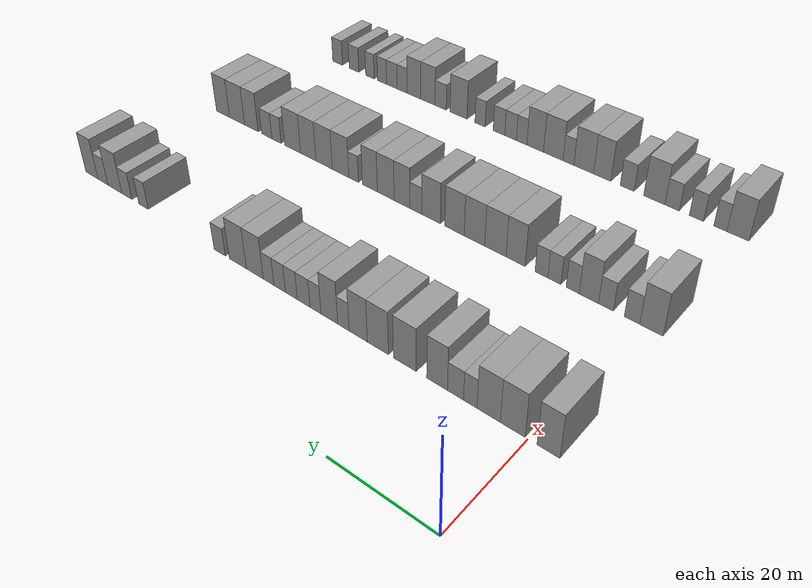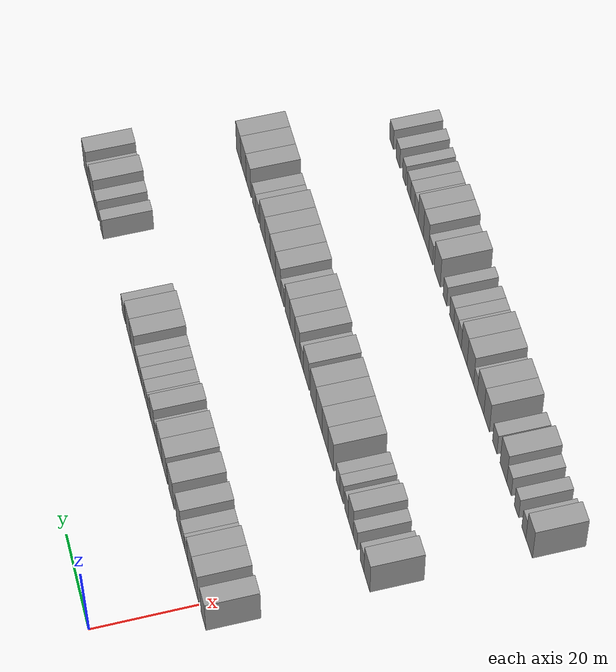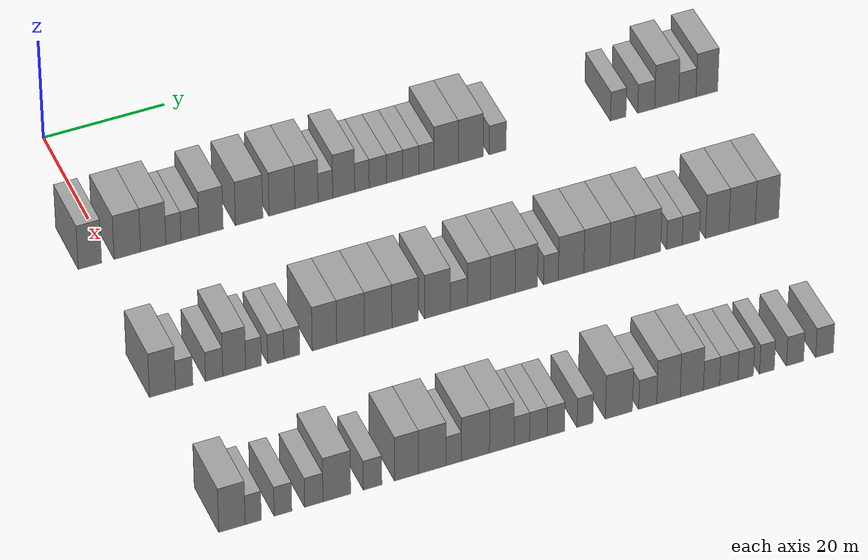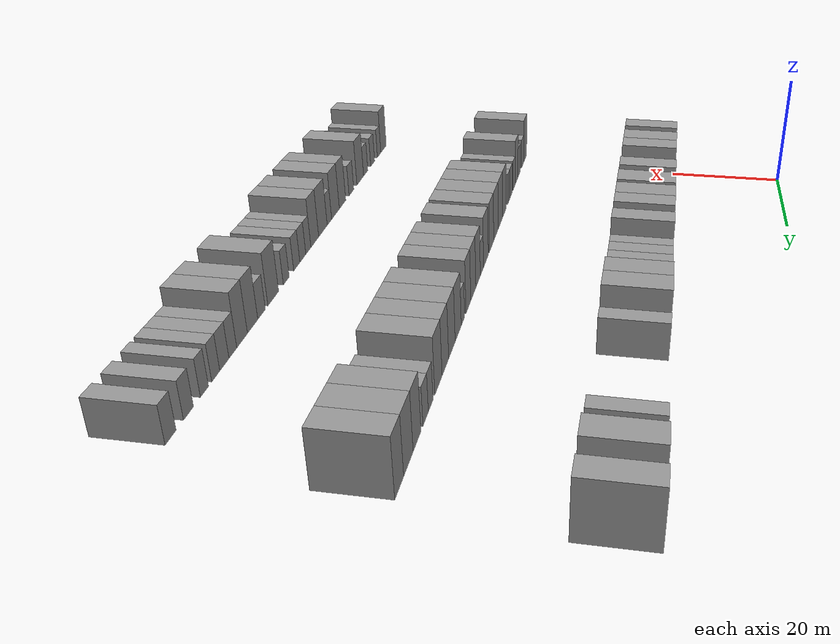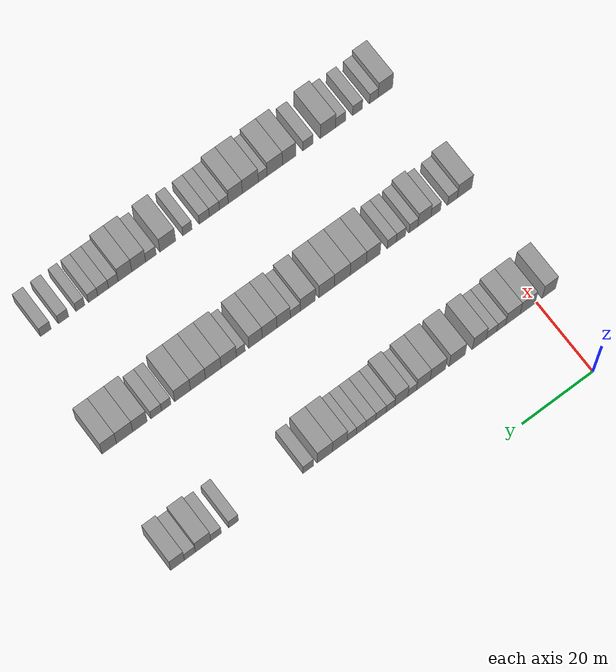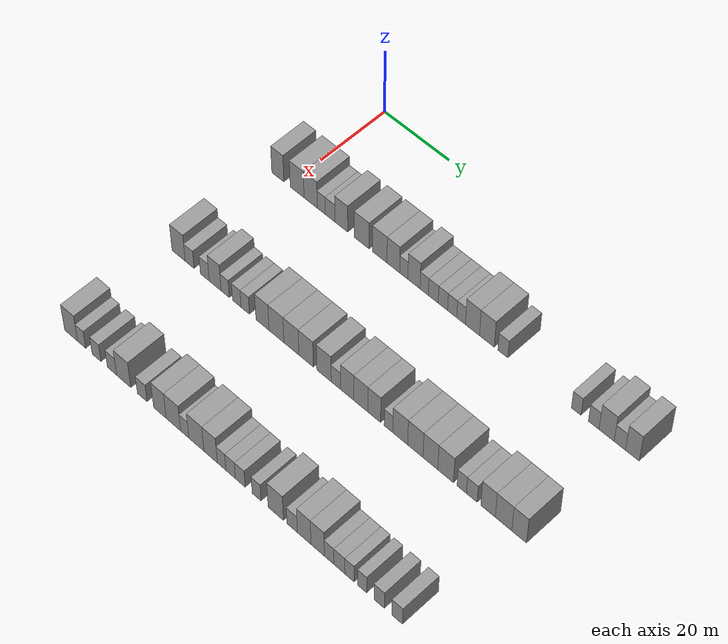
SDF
<sdf version="1.6">
 <world name="default">
  <model name="building_103">
   <static>1</static>
   <pose>25.0000 -3.3682 0 0.000000 0.000000 0.000000</pose>
   <link name="link">
    <pose>0 0 4.50 0 0 0</pose>
    <collision name="collision"><geometry><box><size>10.0000 3.8019 9.0000</size></box></geometry></collision>
    <visual name="visual">
     <cast_shadows>0</cast_shadows>
     <geometry><box><size>10.0000 3.8019 9.0000</size></box></geometry>
     <material>
      <script>
       <uri>model://grey_wall/materials/scripts</uri>
       <uri>model://grey_wall/materials/textures</uri>
       <name>vrc/grey_wall</name>
      </script>
     </material>
    </visual>
   </link>
  </model>
  <model name="building_104">
   <static>1</static>
   <pose>25.0000 2.6820 0 0.000000 0.000000 0.000000</pose>
   <link name="link">
    <pose>0 0 4.50 0 0 0</pose>
    <collision name="collision"><geometry><box><size>10.0000 4.2985 9.0000</size></box></geometry></collision>
    <visual name="visual">
     <cast_shadows>0</cast_shadows>
     <geometry><box><size>10.0000 4.2985 9.0000</size></box></geometry>
     <material>
      <script>
       <uri>model://grey_wall/materials/scripts</uri>
       <uri>model://grey_wall/materials/textures</uri>
       <name>vrc/grey_wall</name>
      </script>
     </material>
    </visual>
   </link>
  </model>
  <model name="building_105">
   <static>1</static>
   <pose>25.0000 6.8907 0 0.000000 0.000000 0.000000</pose>
   <link name="link">
    <pose>0 0 4.50 0 0 0</pose>
    <collision name="collision"><geometry><box><size>10.0000 4.1188 9.0000</size></box></geometry></collision>
    <visual name="visual">
     <cast_shadows>0</cast_shadows>
     <geometry><box><size>10.0000 4.1188 9.0000</size></box></geometry>
     <material>
      <script>
       <uri>model://grey_wall/materials/scripts</uri>
       <uri>model://grey_wall/materials/textures</uri>
       <name>vrc/grey_wall</name>
      </script>
     </material>
    </visual>
   </link>
  </model>
  <model name="building_106">
   <static>1</static>
   <pose>25.0000 10.1801 0 0.000000 0.000000 0.000000</pose>
   <link name="link">
    <pose>0 0 3.00 0 0 0</pose>
    <collision name="collision"><geometry><box><size>10.0000 2.4600 6.0000</size></box></geometry></collision>
    <visual name="visual">
     <cast_shadows>0</cast_shadows>
     <geometry><box><size>10.0000 2.4600 6.0000</size></box></geometry>
     <material>
      <script>
       <uri>model://grey_wall/materials/scripts</uri>
       <uri>model://grey_wall/materials/textures</uri>
       <name>vrc/grey_wall</name>
      </script>
     </material>
    </visual>
   </link>
  </model>
  <model name="building_107">
   <static>1</static>
   <pose>25.0000 12.8931 0 0.000000 0.000000 0.000000</pose>
   <link name="link">
    <pose>0 0 3.00 0 0 0</pose>
    <collision name="collision"><geometry><box><size>10.0000 2.9661 6.0000</size></box></geometry></collision>
    <visual name="visual">
     <cast_shadows>0</cast_shadows>
     <geometry><box><size>10.0000 2.9661 6.0000</size></box></geometry>
     <material>
      <script>
       <uri>model://grey_wall/materials/scripts</uri>
       <uri>model://grey_wall/materials/textures</uri>
       <name>vrc/grey_wall</name>
      </script>
     </material>
    </visual>
   </link>
  </model>
  <model name="building_108">
   <static>1</static>
   <pose>25.0000 16.3398 0 0.000000 0.000000 0.000000</pose>
   <link name="link">
    <pose>0 0 4.50 0 0 0</pose>
    <collision name="collision"><geometry><box><size>10.0000 3.9273 9.0000</size></box></geometry></collision>
    <visual name="visual">
     <cast_shadows>0</cast_shadows>
     <geometry><box><size>10.0000 3.9273 9.0000</size></box></geometry>
     <material>
      <script>
       <uri>model://grey_wall/materials/scripts</uri>
       <uri>model://grey_wall/materials/textures</uri>
       <name>vrc/grey_wall</name>
      </script>
     </material>
    </visual>
   </link>
  </model>
  <model name="building_109">
   <static>1</static>
   <pose>25.0000 22.5527 0 0.000000 0.000000 0.000000</pose>
   <link name="link">
    <pose>0 0 4.50 0 0 0</pose>
    <collision name="collision"><geometry><box><size>10.0000 4.4985 9.0000</size></box></geometry></collision>
    <visual name="visual">
     <cast_shadows>0</cast_shadows>
     <geometry><box><size>10.0000 4.4985 9.0000</size></box></geometry>
     <material>
      <script>
       <uri>model://grey_wall/materials/scripts</uri>
       <uri>model://grey_wall/materials/textures</uri>
       <name>vrc/grey_wall</name>
      </script>
     </material>
    </visual>
   </link>
  </model>
  <model name="building_110">
   <static>1</static>
   <pose>25.0000 27.9456 0 0.000000 0.000000 0.000000</pose>
   <link name="link">
    <pose>0 0 4.50 0 0 0</pose>
    <collision name="collision"><geometry><box><size>10.0000 4.2873 9.0000</size></box></geometry></collision>
    <visual name="visual">
     <cast_shadows>0</cast_shadows>
     <geometry><box><size>10.0000 4.2873 9.0000</size></box></geometry>
     <material>
      <script>
       <uri>model://grey_wall/materials/scripts</uri>
       <uri>model://grey_wall/materials/textures</uri>
       <name>vrc/grey_wall</name>
      </script>
     </material>
    </visual>
   </link>
  </model>
  <model name="building_111">
   <static>1</static>
   <pose>25.0000 31.9948 0 0.000000 0.000000 0.000000</pose>
   <link name="link">
    <pose>0 0 4.50 0 0 0</pose>
    <collision name="collision"><geometry><box><size>10.0000 3.8110 9.0000</size></box></geometry></collision>
    <visual name="visual">
     <cast_shadows>0</cast_shadows>
     <geometry><box><size>10.0000 3.8110 9.0000</size></box></geometry>
     <material>
      <script>
       <uri>model://grey_wall/materials/scripts</uri>
       <uri>model://grey_wall/materials/textures</uri>
       <name>vrc/grey_wall</name>
      </script>
     </material>
    </visual>
   </link>
  </model>
  <model name="building_112">
   <static>1</static>
   <pose>25.0000 35.1090 0 0.000000 0.000000 0.000000</pose>
   <link name="link">
    <pose>0 0 3.00 0 0 0</pose>
    <collision name="collision"><geometry><box><size>10.0000 2.4174 6.0000</size></box></geometry></collision>
    <visual name="visual">
     <cast_shadows>0</cast_shadows>
     <geometry><box><size>10.0000 2.4174 6.0000</size></box></geometry>
     <material>
      <script>
       <uri>model://grey_wall/materials/scripts</uri>
       <uri>model://grey_wall/materials/textures</uri>
       <name>vrc/grey_wall</name>
      </script>
     </material>
    </visual>
   </link>
  </model>
  <model name="building_113">
   <static>1</static>
   <pose>25.0000 38.1297 0 0.000000 0.000000 0.000000</pose>
   <link name="link">
    <pose>0 0 4.50 0 0 0</pose>
    <collision name="collision"><geometry><box><size>10.0000 3.6241 9.0000</size></box></geometry></collision>
    <visual name="visual">
     <cast_shadows>0</cast_shadows>
     <geometry><box><size>10.0000 3.6241 9.0000</size></box></geometry>
     <material>
      <script>
       <uri>model://grey_wall/materials/scripts</uri>
       <uri>model://grey_wall/materials/textures</uri>
       <name>vrc/grey_wall</name>
      </script>
     </material>
    </visual>
   </link>
  </model>
  <model name="building_114">
   <static>1</static>
   <pose>25.0000 41.1473 0 0.000000 0.000000 0.000000</pose>
   <link name="link">
    <pose>0 0 3.00 0 0 0</pose>
    <collision name="collision"><geometry><box><size>10.0000 2.4110 6.0000</size></box></geometry></collision>
    <visual name="visual">
     <cast_shadows>0</cast_shadows>
     <geometry><box><size>10.0000 2.4110 6.0000</size></box></geometry>
     <material>
      <script>
       <uri>model://grey_wall/materials/scripts</uri>
       <uri>model://grey_wall/materials/textures</uri>
       <name>vrc/grey_wall</name>
      </script>
     </material>
    </visual>
   </link>
  </model>
  <model name="building_115">
   <static>1</static>
   <pose>25.0000 43.7891 0 0.000000 0.000000 0.000000</pose>
   <link name="link">
    <pose>0 0 3.00 0 0 0</pose>
    <collision name="collision"><geometry><box><size>10.0000 2.8726 6.0000</size></box></geometry></collision>
    <visual name="visual">
     <cast_shadows>0</cast_shadows>
     <geometry><box><size>10.0000 2.8726 6.0000</size></box></geometry>
     <material>
      <script>
       <uri>model://grey_wall/materials/scripts</uri>
       <uri>model://grey_wall/materials/textures</uri>
       <name>vrc/grey_wall</name>
      </script>
     </material>
    </visual>
   </link>
  </model>
  <model name="building_116">
   <static>1</static>
   <pose>25.0000 46.5852 0 0.000000 0.000000 0.000000</pose>
   <link name="link">
    <pose>0 0 3.00 0 0 0</pose>
    <collision name="collision"><geometry><box><size>10.0000 2.7195 6.0000</size></box></geometry></collision>
    <visual name="visual">
     <cast_shadows>0</cast_shadows>
     <geometry><box><size>10.0000 2.7195 6.0000</size></box></geometry>
     <material>
      <script>
       <uri>model://grey_wall/materials/scripts</uri>
       <uri>model://grey_wall/materials/textures</uri>
       <name>vrc/grey_wall</name>
      </script>
     </material>
    </visual>
   </link>
  </model>
  <model name="building_117">
   <static>1</static>
   <pose>25.0000 49.2761 0 0.000000 0.000000 0.000000</pose>
   <link name="link">
    <pose>0 0 3.00 0 0 0</pose>
    <collision name="collision"><geometry><box><size>10.0000 2.6624 6.0000</size></box></geometry></collision>
    <visual name="visual">
     <cast_shadows>0</cast_shadows>
     <geometry><box><size>10.0000 2.6624 6.0000</size></box></geometry>
     <material>
      <script>
       <uri>model://grey_wall/materials/scripts</uri>
       <uri>model://grey_wall/materials/textures</uri>
       <name>vrc/grey_wall</name>
      </script>
     </material>
    </visual>
   </link>
  </model>
  <model name="building_118">
   <static>1</static>
   <pose>25.0000 51.8542 0 0.000000 0.000000 0.000000</pose>
   <link name="link">
    <pose>0 0 3.00 0 0 0</pose>
    <collision name="collision"><geometry><box><size>10.0000 2.4939 6.0000</size></box></geometry></collision>
    <visual name="visual">
     <cast_shadows>0</cast_shadows>
     <geometry><box><size>10.0000 2.4939 6.0000</size></box></geometry>
     <material>
      <script>
       <uri>model://grey_wall/materials/scripts</uri>
       <uri>model://grey_wall/materials/textures</uri>
       <name>vrc/grey_wall</name>
      </script>
     </material>
    </visual>
   </link>
  </model>
  <model name="building_119">
   <static>1</static>
   <pose>25.0000 55.1334 0 0.000000 0.000000 0.000000</pose>
   <link name="link">
    <pose>0 0 4.50 0 0 0</pose>
    <collision name="collision"><geometry><box><size>10.0000 4.0644 9.0000</size></box></geometry></collision>
    <visual name="visual">
     <cast_shadows>0</cast_shadows>
     <geometry><box><size>10.0000 4.0644 9.0000</size></box></geometry>
     <material>
      <script>
       <uri>model://grey_wall/materials/scripts</uri>
       <uri>model://grey_wall/materials/textures</uri>
       <name>vrc/grey_wall</name>
      </script>
     </material>
    </visual>
   </link>
  </model>
  <model name="building_120">
   <static>1</static>
   <pose>25.0000 59.2651 0 0.000000 0.000000 0.000000</pose>
   <link name="link">
    <pose>0 0 4.50 0 0 0</pose>
    <collision name="collision"><geometry><box><size>10.0000 4.1990 9.0000</size></box></geometry></collision>
    <visual name="visual">
     <cast_shadows>0</cast_shadows>
     <geometry><box><size>10.0000 4.1990 9.0000</size></box></geometry>
     <material>
      <script>
       <uri>model://grey_wall/materials/scripts</uri>
       <uri>model://grey_wall/materials/textures</uri>
       <name>vrc/grey_wall</name>
      </script>
     </material>
    </visual>
   </link>
  </model>
  <model name="building_121">
   <static>1</static>
   <pose>25.0000 63.7911 0 0.000000 0.000000 0.000000</pose>
   <link name="link">
    <pose>0 0 3.00 0 0 0</pose>
    <collision name="collision"><geometry><box><size>10.0000 2.8531 6.0000</size></box></geometry></collision>
    <visual name="visual">
     <cast_shadows>0</cast_shadows>
     <geometry><box><size>10.0000 2.8531 6.0000</size></box></geometry>
     <material>
      <script>
       <uri>model://grey_wall/materials/scripts</uri>
       <uri>model://grey_wall/materials/textures</uri>
       <name>vrc/grey_wall</name>
      </script>
     </material>
    </visual>
   </link>
  </model>
  <model name="building_122">
   <static>1</static>
   <pose>25.0000 84.1562 0 0.000000 0.000000 0.000000</pose>
   <link name="link">
    <pose>0 0 3.00 0 0 0</pose>
    <collision name="collision"><geometry><box><size>10.0000 2.6257 6.0000</size></box></geometry></collision>
    <visual name="visual">
     <cast_shadows>0</cast_shadows>
     <geometry><box><size>10.0000 2.6257 6.0000</size></box></geometry>
     <material>
      <script>
       <uri>model://grey_wall/materials/scripts</uri>
       <uri>model://grey_wall/materials/textures</uri>
       <name>vrc/grey_wall</name>
      </script>
     </material>
    </visual>
   </link>
  </model>
  <model name="building_123">
   <static>1</static>
   <pose>25.0000 88.9051 0 0.000000 0.000000 0.000000</pose>
   <link name="link">
    <pose>0 0 3.00 0 0 0</pose>
    <collision name="collision"><geometry><box><size>10.0000 2.8723 6.0000</size></box></geometry></collision>
    <visual name="visual">
     <cast_shadows>0</cast_shadows>
     <geometry><box><size>10.0000 2.8723 6.0000</size></box></geometry>
     <material>
      <script>
       <uri>model://grey_wall/materials/scripts</uri>
       <uri>model://grey_wall/materials/textures</uri>
       <name>vrc/grey_wall</name>
      </script>
     </material>
    </visual>
   </link>
  </model>
  <model name="building_124">
   <static>1</static>
   <pose>25.0000 92.3896 0 0.000000 0.000000 0.000000</pose>
   <link name="link">
    <pose>0 0 4.50 0 0 0</pose>
    <collision name="collision"><geometry><box><size>10.0000 4.0966 9.0000</size></box></geometry></collision>
    <visual name="visual">
     <cast_shadows>0</cast_shadows>
     <geometry><box><size>10.0000 4.0966 9.0000</size></box></geometry>
     <material>
      <script>
       <uri>model://grey_wall/materials/scripts</uri>
       <uri>model://grey_wall/materials/textures</uri>
       <name>vrc/grey_wall</name>
      </script>
     </material>
    </visual>
   </link>
  </model>
  <model name="building_125">
   <static>1</static>
   <pose>25.0000 95.9275 0 0.000000 0.000000 0.000000</pose>
   <link name="link">
    <pose>0 0 3.00 0 0 0</pose>
    <collision name="collision"><geometry><box><size>10.0000 2.9792 6.0000</size></box></geometry></collision>
    <visual name="visual">
     <cast_shadows>0</cast_shadows>
     <geometry><box><size>10.0000 2.9792 6.0000</size></box></geometry>
     <material>
      <script>
       <uri>model://grey_wall/materials/scripts</uri>
       <uri>model://grey_wall/materials/textures</uri>
       <name>vrc/grey_wall</name>
      </script>
     </material>
    </visual>
   </link>
  </model>
  <model name="building_126">
   <static>1</static>
   <pose>25.0000 99.2682 0 0.000000 0.000000 0.000000</pose>
   <link name="link">
    <pose>0 0 4.50 0 0 0</pose>
    <collision name="collision"><geometry><box><size>10.0000 3.7021 9.0000</size></box></geometry></collision>
    <visual name="visual">
     <cast_shadows>0</cast_shadows>
     <geometry><box><size>10.0000 3.7021 9.0000</size></box></geometry>
     <material>
      <script>
       <uri>model://grey_wall/materials/scripts</uri>
       <uri>model://grey_wall/materials/textures</uri>
       <name>vrc/grey_wall</name>
      </script>
     </material>
    </visual>
   </link>
  </model>
  <model name="building_335">
   <static>1</static>
   <pose>55.0000 -2.9037 0 0.000000 0.000000 0.000000</pose>
   <link name="link">
    <pose>0 0 4.50 0 0 0</pose>
    <collision name="collision"><geometry><box><size>10.0000 4.1291 9.0000</size></box></geometry></collision>
    <visual name="visual">
     <cast_shadows>0</cast_shadows>
     <geometry><box><size>10.0000 4.1291 9.0000</size></box></geometry>
     <material>
      <script>
       <uri>model://grey_wall/materials/scripts</uri>
       <uri>model://grey_wall/materials/textures</uri>
       <name>vrc/grey_wall</name>
      </script>
     </material>
    </visual>
   </link>
  </model>
  <model name="building_336">
   <static>1</static>
   <pose>55.0000 0.5549 0 0.000000 0.000000 0.000000</pose>
   <link name="link">
    <pose>0 0 3.00 0 0 0</pose>
    <collision name="collision"><geometry><box><size>10.0000 2.7881 6.0000</size></box></geometry></collision>
    <visual name="visual">
     <cast_shadows>0</cast_shadows>
     <geometry><box><size>10.0000 2.7881 6.0000</size></box></geometry>
     <material>
      <script>
       <uri>model://grey_wall/materials/scripts</uri>
       <uri>model://grey_wall/materials/textures</uri>
       <name>vrc/grey_wall</name>
      </script>
     </material>
    </visual>
   </link>
  </model>
  <model name="building_337">
   <static>1</static>
   <pose>55.0000 5.3256 0 0.000000 0.000000 0.000000</pose>
   <link name="link">
    <pose>0 0 3.00 0 0 0</pose>
    <collision name="collision"><geometry><box><size>10.0000 2.7534 6.0000</size></box></geometry></collision>
    <visual name="visual">
     <cast_shadows>0</cast_shadows>
     <geometry><box><size>10.0000 2.7534 6.0000</size></box></geometry>
     <material>
      <script>
       <uri>model://grey_wall/materials/scripts</uri>
       <uri>model://grey_wall/materials/textures</uri>
       <name>vrc/grey_wall</name>
      </script>
     </material>
    </visual>
   </link>
  </model>
  <model name="building_338">
   <static>1</static>
   <pose>55.0000 8.5414 0 0.000000 0.000000 0.000000</pose>
   <link name="link">
    <pose>0 0 4.50 0 0 0</pose>
    <collision name="collision"><geometry><box><size>10.0000 3.6780 9.0000</size></box></geometry></collision>
    <visual name="visual">
     <cast_shadows>0</cast_shadows>
     <geometry><box><size>10.0000 3.6780 9.0000</size></box></geometry>
     <material>
      <script>
       <uri>model://grey_wall/materials/scripts</uri>
       <uri>model://grey_wall/materials/textures</uri>
       <name>vrc/grey_wall</name>
      </script>
     </material>
    </visual>
   </link>
  </model>
  <model name="building_339">
   <static>1</static>
   <pose>55.0000 11.6383 0 0.000000 0.000000 0.000000</pose>
   <link name="link">
    <pose>0 0 3.00 0 0 0</pose>
    <collision name="collision"><geometry><box><size>10.0000 2.5159 6.0000</size></box></geometry></collision>
    <visual name="visual">
     <cast_shadows>0</cast_shadows>
     <geometry><box><size>10.0000 2.5159 6.0000</size></box></geometry>
     <material>
      <script>
       <uri>model://grey_wall/materials/scripts</uri>
       <uri>model://grey_wall/materials/textures</uri>
       <name>vrc/grey_wall</name>
      </script>
     </material>
    </visual>
   </link>
  </model>
  <model name="building_340">
   <static>1</static>
   <pose>55.0000 15.1910 0 0.000000 0.000000 0.000000</pose>
   <link name="link">
    <pose>0 0 3.00 0 0 0</pose>
    <collision name="collision"><geometry><box><size>10.0000 2.5895 6.0000</size></box></geometry></collision>
    <visual name="visual">
     <cast_shadows>0</cast_shadows>
     <geometry><box><size>10.0000 2.5895 6.0000</size></box></geometry>
     <material>
      <script>
       <uri>model://grey_wall/materials/scripts</uri>
       <uri>model://grey_wall/materials/textures</uri>
       <name>vrc/grey_wall</name>
      </script>
     </material>
    </visual>
   </link>
  </model>
  <model name="building_341">
   <static>1</static>
   <pose>55.0000 17.7638 0 0.000000 0.000000 0.000000</pose>
   <link name="link">
    <pose>0 0 3.00 0 0 0</pose>
    <collision name="collision"><geometry><box><size>10.0000 2.5561 6.0000</size></box></geometry></collision>
    <visual name="visual">
     <cast_shadows>0</cast_shadows>
     <geometry><box><size>10.0000 2.5561 6.0000</size></box></geometry>
     <material>
      <script>
       <uri>model://grey_wall/materials/scripts</uri>
       <uri>model://grey_wall/materials/textures</uri>
       <name>vrc/grey_wall</name>
      </script>
     </material>
    </visual>
   </link>
  </model>
  <model name="building_342">
   <static>1</static>
   <pose>55.0000 23.0082 0 0.000000 0.000000 0.000000</pose>
   <link name="link">
    <pose>0 0 4.50 0 0 0</pose>
    <collision name="collision"><geometry><box><size>10.0000 3.9326 9.0000</size></box></geometry></collision>
    <visual name="visual">
     <cast_shadows>0</cast_shadows>
     <geometry><box><size>10.0000 3.9326 9.0000</size></box></geometry>
     <material>
      <script>
       <uri>model://grey_wall/materials/scripts</uri>
       <uri>model://grey_wall/materials/textures</uri>
       <name>vrc/grey_wall</name>
      </script>
     </material>
    </visual>
   </link>
  </model>
  <model name="building_343">
   <static>1</static>
   <pose>55.0000 27.2236 0 0.000000 0.000000 0.000000</pose>
   <link name="link">
    <pose>0 0 4.50 0 0 0</pose>
    <collision name="collision"><geometry><box><size>10.0000 4.4982 9.0000</size></box></geometry></collision>
    <visual name="visual">
     <cast_shadows>0</cast_shadows>
     <geometry><box><size>10.0000 4.4982 9.0000</size></box></geometry>
     <material>
      <script>
       <uri>model://grey_wall/materials/scripts</uri>
       <uri>model://grey_wall/materials/textures</uri>
       <name>vrc/grey_wall</name>
      </script>
     </material>
    </visual>
   </link>
  </model>
  <model name="building_344">
   <static>1</static>
   <pose>55.0000 31.6979 0 0.000000 0.000000 0.000000</pose>
   <link name="link">
    <pose>0 0 4.50 0 0 0</pose>
    <collision name="collision"><geometry><box><size>10.0000 4.4505 9.0000</size></box></geometry></collision>
    <visual name="visual">
     <cast_shadows>0</cast_shadows>
     <geometry><box><size>10.0000 4.4505 9.0000</size></box></geometry>
     <material>
      <script>
       <uri>model://grey_wall/materials/scripts</uri>
       <uri>model://grey_wall/materials/textures</uri>
       <name>vrc/grey_wall</name>
      </script>
     </material>
    </visual>
   </link>
  </model>
  <model name="building_345">
   <static>1</static>
   <pose>55.0000 36.0686 0 0.000000 0.000000 0.000000</pose>
   <link name="link">
    <pose>0 0 4.50 0 0 0</pose>
    <collision name="collision"><geometry><box><size>10.0000 4.2909 9.0000</size></box></geometry></collision>
    <visual name="visual">
     <cast_shadows>0</cast_shadows>
     <geometry><box><size>10.0000 4.2909 9.0000</size></box></geometry>
     <material>
      <script>
       <uri>model://grey_wall/materials/scripts</uri>
       <uri>model://grey_wall/materials/textures</uri>
       <name>vrc/grey_wall</name>
      </script>
     </material>
    </visual>
   </link>
  </model>
  <model name="building_346">
   <static>1</static>
   <pose>55.0000 41.3172 0 0.000000 0.000000 0.000000</pose>
   <link name="link">
    <pose>0 0 4.50 0 0 0</pose>
    <collision name="collision"><geometry><box><size>10.0000 4.2062 9.0000</size></box></geometry></collision>
    <visual name="visual">
     <cast_shadows>0</cast_shadows>
     <geometry><box><size>10.0000 4.2062 9.0000</size></box></geometry>
     <material>
      <script>
       <uri>model://grey_wall/materials/scripts</uri>
       <uri>model://grey_wall/materials/textures</uri>
       <name>vrc/grey_wall</name>
      </script>
     </material>
    </visual>
   </link>
  </model>
  <model name="building_347">
   <static>1</static>
   <pose>55.0000 44.8144 0 0.000000 0.000000 0.000000</pose>
   <link name="link">
    <pose>0 0 3.00 0 0 0</pose>
    <collision name="collision"><geometry><box><size>10.0000 2.7882 6.0000</size></box></geometry></collision>
    <visual name="visual">
     <cast_shadows>0</cast_shadows>
     <geometry><box><size>10.0000 2.7882 6.0000</size></box></geometry>
     <material>
      <script>
       <uri>model://grey_wall/materials/scripts</uri>
       <uri>model://grey_wall/materials/textures</uri>
       <name>vrc/grey_wall</name>
      </script>
     </material>
    </visual>
   </link>
  </model>
  <model name="building_348">
   <static>1</static>
   <pose>55.0000 48.0752 0 0.000000 0.000000 0.000000</pose>
   <link name="link">
    <pose>0 0 4.50 0 0 0</pose>
    <collision name="collision"><geometry><box><size>10.0000 3.7334 9.0000</size></box></geometry></collision>
    <visual name="visual">
     <cast_shadows>0</cast_shadows>
     <geometry><box><size>10.0000 3.7334 9.0000</size></box></geometry>
     <material>
      <script>
       <uri>model://grey_wall/materials/scripts</uri>
       <uri>model://grey_wall/materials/textures</uri>
       <name>vrc/grey_wall</name>
      </script>
     </material>
    </visual>
   </link>
  </model>
  <model name="building_349">
   <static>1</static>
   <pose>55.0000 51.9784 0 0.000000 0.000000 0.000000</pose>
   <link name="link">
    <pose>0 0 4.50 0 0 0</pose>
    <collision name="collision"><geometry><box><size>10.0000 4.0731 9.0000</size></box></geometry></collision>
    <visual name="visual">
     <cast_shadows>0</cast_shadows>
     <geometry><box><size>10.0000 4.0731 9.0000</size></box></geometry>
     <material>
      <script>
       <uri>model://grey_wall/materials/scripts</uri>
       <uri>model://grey_wall/materials/textures</uri>
       <name>vrc/grey_wall</name>
      </script>
     </material>
    </visual>
   </link>
  </model>
  <model name="building_350">
   <static>1</static>
   <pose>55.0000 55.8538 0 0.000000 0.000000 0.000000</pose>
   <link name="link">
    <pose>0 0 4.50 0 0 0</pose>
    <collision name="collision"><geometry><box><size>10.0000 3.6778 9.0000</size></box></geometry></collision>
    <visual name="visual">
     <cast_shadows>0</cast_shadows>
     <geometry><box><size>10.0000 3.6778 9.0000</size></box></geometry>
     <material>
      <script>
       <uri>model://grey_wall/materials/scripts</uri>
       <uri>model://grey_wall/materials/textures</uri>
       <name>vrc/grey_wall</name>
      </script>
     </material>
    </visual>
   </link>
  </model>
  <model name="building_351">
   <static>1</static>
   <pose>55.0000 59.9099 0 0.000000 0.000000 0.000000</pose>
   <link name="link">
    <pose>0 0 3.00 0 0 0</pose>
    <collision name="collision"><geometry><box><size>10.0000 2.4343 6.0000</size></box></geometry></collision>
    <visual name="visual">
     <cast_shadows>0</cast_shadows>
     <geometry><box><size>10.0000 2.4343 6.0000</size></box></geometry>
     <material>
      <script>
       <uri>model://grey_wall/materials/scripts</uri>
       <uri>model://grey_wall/materials/textures</uri>
       <name>vrc/grey_wall</name>
      </script>
     </material>
    </visual>
   </link>
  </model>
  <model name="building_352">
   <static>1</static>
   <pose>55.0000 63.2343 0 0.000000 0.000000 0.000000</pose>
   <link name="link">
    <pose>0 0 4.50 0 0 0</pose>
    <collision name="collision"><geometry><box><size>10.0000 4.2145 9.0000</size></box></geometry></collision>
    <visual name="visual">
     <cast_shadows>0</cast_shadows>
     <geometry><box><size>10.0000 4.2145 9.0000</size></box></geometry>
     <material>
      <script>
       <uri>model://grey_wall/materials/scripts</uri>
       <uri>model://grey_wall/materials/textures</uri>
       <name>vrc/grey_wall</name>
      </script>
     </material>
    </visual>
   </link>
  </model>
  <model name="building_353">
   <static>1</static>
   <pose>55.0000 67.4836 0 0.000000 0.000000 0.000000</pose>
   <link name="link">
    <pose>0 0 4.50 0 0 0</pose>
    <collision name="collision"><geometry><box><size>10.0000 4.2840 9.0000</size></box></geometry></collision>
    <visual name="visual">
     <cast_shadows>0</cast_shadows>
     <geometry><box><size>10.0000 4.2840 9.0000</size></box></geometry>
     <material>
      <script>
       <uri>model://grey_wall/materials/scripts</uri>
       <uri>model://grey_wall/materials/textures</uri>
       <name>vrc/grey_wall</name>
      </script>
     </material>
    </visual>
   </link>
  </model>
  <model name="building_354">
   <static>1</static>
   <pose>55.0000 71.6878 0 0.000000 0.000000 0.000000</pose>
   <link name="link">
    <pose>0 0 4.50 0 0 0</pose>
    <collision name="collision"><geometry><box><size>10.0000 4.1245 9.0000</size></box></geometry></collision>
    <visual name="visual">
     <cast_shadows>0</cast_shadows>
     <geometry><box><size>10.0000 4.1245 9.0000</size></box></geometry>
     <material>
      <script>
       <uri>model://grey_wall/materials/scripts</uri>
       <uri>model://grey_wall/materials/textures</uri>
       <name>vrc/grey_wall</name>
      </script>
     </material>
    </visual>
   </link>
  </model>
  <model name="building_355">
   <static>1</static>
   <pose>55.0000 75.9134 0 0.000000 0.000000 0.000000</pose>
   <link name="link">
    <pose>0 0 4.50 0 0 0</pose>
    <collision name="collision"><geometry><box><size>10.0000 4.3267 9.0000</size></box></geometry></collision>
    <visual name="visual">
     <cast_shadows>0</cast_shadows>
     <geometry><box><size>10.0000 4.3267 9.0000</size></box></geometry>
     <material>
      <script>
       <uri>model://grey_wall/materials/scripts</uri>
       <uri>model://grey_wall/materials/textures</uri>
       <name>vrc/grey_wall</name>
      </script>
     </material>
    </visual>
   </link>
  </model>
  <model name="building_356">
   <static>1</static>
   <pose>55.0000 80.3630 0 0.000000 0.000000 0.000000</pose>
   <link name="link">
    <pose>0 0 3.00 0 0 0</pose>
    <collision name="collision"><geometry><box><size>10.0000 2.5725 6.0000</size></box></geometry></collision>
    <visual name="visual">
     <cast_shadows>0</cast_shadows>
     <geometry><box><size>10.0000 2.5725 6.0000</size></box></geometry>
     <material>
      <script>
       <uri>model://grey_wall/materials/scripts</uri>
       <uri>model://grey_wall/materials/textures</uri>
       <name>vrc/grey_wall</name>
      </script>
     </material>
    </visual>
   </link>
  </model>
  <model name="building_357">
   <static>1</static>
   <pose>55.0000 83.1028 0 0.000000 0.000000 0.000000</pose>
   <link name="link">
    <pose>0 0 3.00 0 0 0</pose>
    <collision name="collision"><geometry><box><size>10.0000 2.9072 6.0000</size></box></geometry></collision>
    <visual name="visual">
     <cast_shadows>0</cast_shadows>
     <geometry><box><size>10.0000 2.9072 6.0000</size></box></geometry>
     <material>
      <script>
       <uri>model://grey_wall/materials/scripts</uri>
       <uri>model://grey_wall/materials/textures</uri>
       <name>vrc/grey_wall</name>
      </script>
     </material>
    </visual>
   </link>
  </model>
  <model name="building_358">
   <static>1</static>
   <pose>55.0000 87.5106 0 0.000000 0.000000 0.000000</pose>
   <link name="link">
    <pose>0 0 4.50 0 0 0</pose>
    <collision name="collision"><geometry><box><size>10.0000 3.9083 9.0000</size></box></geometry></collision>
    <visual name="visual">
     <cast_shadows>0</cast_shadows>
     <geometry><box><size>10.0000 3.9083 9.0000</size></box></geometry>
     <material>
      <script>
       <uri>model://grey_wall/materials/scripts</uri>
       <uri>model://grey_wall/materials/textures</uri>
       <name>vrc/grey_wall</name>
      </script>
     </material>
    </visual>
   </link>
  </model>
  <model name="building_359">
   <static>1</static>
   <pose>55.0000 91.6807 0 0.000000 0.000000 0.000000</pose>
   <link name="link">
    <pose>0 0 4.50 0 0 0</pose>
    <collision name="collision"><geometry><box><size>10.0000 4.4318 9.0000</size></box></geometry></collision>
    <visual name="visual">
     <cast_shadows>0</cast_shadows>
     <geometry><box><size>10.0000 4.4318 9.0000</size></box></geometry>
     <material>
      <script>
       <uri>model://grey_wall/materials/scripts</uri>
       <uri>model://grey_wall/materials/textures</uri>
       <name>vrc/grey_wall</name>
      </script>
     </material>
    </visual>
   </link>
  </model>
  <model name="building_360">
   <static>1</static>
   <pose>55.0000 95.8655 0 0.000000 0.000000 0.000000</pose>
   <link name="link">
    <pose>0 0 4.50 0 0 0</pose>
    <collision name="collision"><geometry><box><size>10.0000 3.9377 9.0000</size></box></geometry></collision>
    <visual name="visual">
     <cast_shadows>0</cast_shadows>
     <geometry><box><size>10.0000 3.9377 9.0000</size></box></geometry>
     <material>
      <script>
       <uri>model://grey_wall/materials/scripts</uri>
       <uri>model://grey_wall/materials/textures</uri>
       <name>vrc/grey_wall</name>
      </script>
     </material>
    </visual>
   </link>
  </model>
  <model name="building_563">
   <static>1</static>
   <pose>85.0000 -3.3902 0 0.000000 0.000000 0.000000</pose>
   <link name="link">
    <pose>0 0 4.50 0 0 0</pose>
    <collision name="collision"><geometry><box><size>10.0000 4.1432 9.0000</size></box></geometry></collision>
    <visual name="visual">
     <cast_shadows>0</cast_shadows>
     <geometry><box><size>10.0000 4.1432 9.0000</size></box></geometry>
     <material>
      <script>
       <uri>model://grey_wall/materials/scripts</uri>
       <uri>model://grey_wall/materials/textures</uri>
       <name>vrc/grey_wall</name>
      </script>
     </material>
    </visual>
   </link>
  </model>
  <model name="building_564">
   <static>1</static>
   <pose>85.0000 -0.0617 0 0.000000 0.000000 0.000000</pose>
   <link name="link">
    <pose>0 0 3.00 0 0 0</pose>
    <collision name="collision"><geometry><box><size>10.0000 2.5137 6.0000</size></box></geometry></collision>
    <visual name="visual">
     <cast_shadows>0</cast_shadows>
     <geometry><box><size>10.0000 2.5137 6.0000</size></box></geometry>
     <material>
      <script>
       <uri>model://grey_wall/materials/scripts</uri>
       <uri>model://grey_wall/materials/textures</uri>
       <name>vrc/grey_wall</name>
      </script>
     </material>
    </visual>
   </link>
  </model>
  <model name="building_565">
   <static>1</static>
   <pose>85.0000 4.5789 0 0.000000 0.000000 0.000000</pose>
   <link name="link">
    <pose>0 0 3.00 0 0 0</pose>
    <collision name="collision"><geometry><box><size>10.0000 2.7676 6.0000</size></box></geometry></collision>
    <visual name="visual">
     <cast_shadows>0</cast_shadows>
     <geometry><box><size>10.0000 2.7676 6.0000</size></box></geometry>
     <material>
      <script>
       <uri>model://grey_wall/materials/scripts</uri>
       <uri>model://grey_wall/materials/textures</uri>
       <name>vrc/grey_wall</name>
      </script>
     </material>
    </visual>
   </link>
  </model>
  <model name="building_566">
   <static>1</static>
   <pose>85.0000 9.4028 0 0.000000 0.000000 0.000000</pose>
   <link name="link">
    <pose>0 0 3.00 0 0 0</pose>
    <collision name="collision"><geometry><box><size>10.0000 2.8801 6.0000</size></box></geometry></collision>
    <visual name="visual">
     <cast_shadows>0</cast_shadows>
     <geometry><box><size>10.0000 2.8801 6.0000</size></box></geometry>
     <material>
      <script>
       <uri>model://grey_wall/materials/scripts</uri>
       <uri>model://grey_wall/materials/textures</uri>
       <name>vrc/grey_wall</name>
      </script>
     </material>
    </visual>
   </link>
  </model>
  <model name="building_567">
   <static>1</static>
   <pose>85.0000 13.0254 0 0.000000 0.000000 0.000000</pose>
   <link name="link">
    <pose>0 0 4.50 0 0 0</pose>
    <collision name="collision"><geometry><box><size>10.0000 4.3651 9.0000</size></box></geometry></collision>
    <visual name="visual">
     <cast_shadows>0</cast_shadows>
     <geometry><box><size>10.0000 4.3651 9.0000</size></box></geometry>
     <material>
      <script>
       <uri>model://grey_wall/materials/scripts</uri>
       <uri>model://grey_wall/materials/textures</uri>
       <name>vrc/grey_wall</name>
      </script>
     </material>
    </visual>
   </link>
  </model>
  <model name="building_568">
   <static>1</static>
   <pose>85.0000 18.6779 0 0.000000 0.000000 0.000000</pose>
   <link name="link">
    <pose>0 0 3.00 0 0 0</pose>
    <collision name="collision"><geometry><box><size>10.0000 2.9400 6.0000</size></box></geometry></collision>
    <visual name="visual">
     <cast_shadows>0</cast_shadows>
     <geometry><box><size>10.0000 2.9400 6.0000</size></box></geometry>
     <material>
      <script>
       <uri>model://grey_wall/materials/scripts</uri>
       <uri>model://grey_wall/materials/textures</uri>
       <name>vrc/grey_wall</name>
      </script>
     </material>
    </visual>
   </link>
  </model>
  <model name="building_569">
   <static>1</static>
   <pose>85.0000 24.0415 0 0.000000 0.000000 0.000000</pose>
   <link name="link">
    <pose>0 0 4.50 0 0 0</pose>
    <collision name="collision"><geometry><box><size>10.0000 3.7872 9.0000</size></box></geometry></collision>
    <visual name="visual">
     <cast_shadows>0</cast_shadows>
     <geometry><box><size>10.0000 3.7872 9.0000</size></box></geometry>
     <material>
      <script>
       <uri>model://grey_wall/materials/scripts</uri>
       <uri>model://grey_wall/materials/textures</uri>
       <name>vrc/grey_wall</name>
      </script>
     </material>
    </visual>
   </link>
  </model>
  <model name="building_570">
   <static>1</static>
   <pose>85.0000 28.1155 0 0.000000 0.000000 0.000000</pose>
   <link name="link">
    <pose>0 0 4.50 0 0 0</pose>
    <collision name="collision"><geometry><box><size>10.0000 4.3606 9.0000</size></box></geometry></collision>
    <visual name="visual">
     <cast_shadows>0</cast_shadows>
     <geometry><box><size>10.0000 4.3606 9.0000</size></box></geometry>
     <material>
      <script>
       <uri>model://grey_wall/materials/scripts</uri>
       <uri>model://grey_wall/materials/textures</uri>
       <name>vrc/grey_wall</name>
      </script>
     </material>
    </visual>
   </link>
  </model>
  <model name="building_571">
   <static>1</static>
   <pose>85.0000 31.5137 0 0.000000 0.000000 0.000000</pose>
   <link name="link">
    <pose>0 0 3.00 0 0 0</pose>
    <collision name="collision"><geometry><box><size>10.0000 2.4359 6.0000</size></box></geometry></collision>
    <visual name="visual">
     <cast_shadows>0</cast_shadows>
     <geometry><box><size>10.0000 2.4359 6.0000</size></box></geometry>
     <material>
      <script>
       <uri>model://grey_wall/materials/scripts</uri>
       <uri>model://grey_wall/materials/textures</uri>
       <name>vrc/grey_wall</name>
      </script>
     </material>
    </visual>
   </link>
  </model>
  <model name="building_572">
   <static>1</static>
   <pose>85.0000 34.9789 0 0.000000 0.000000 0.000000</pose>
   <link name="link">
    <pose>0 0 4.50 0 0 0</pose>
    <collision name="collision"><geometry><box><size>10.0000 4.4945 9.0000</size></box></geometry></collision>
    <visual name="visual">
     <cast_shadows>0</cast_shadows>
     <geometry><box><size>10.0000 4.4945 9.0000</size></box></geometry>
     <material>
      <script>
       <uri>model://grey_wall/materials/scripts</uri>
       <uri>model://grey_wall/materials/textures</uri>
       <name>vrc/grey_wall</name>
      </script>
     </material>
    </visual>
   </link>
  </model>
  <model name="building_573">
   <static>1</static>
   <pose>85.0000 39.1868 0 0.000000 0.000000 0.000000</pose>
   <link name="link">
    <pose>0 0 4.50 0 0 0</pose>
    <collision name="collision"><geometry><box><size>10.0000 3.9214 9.0000</size></box></geometry></collision>
    <visual name="visual">
     <cast_shadows>0</cast_shadows>
     <geometry><box><size>10.0000 3.9214 9.0000</size></box></geometry>
     <material>
      <script>
       <uri>model://grey_wall/materials/scripts</uri>
       <uri>model://grey_wall/materials/textures</uri>
       <name>vrc/grey_wall</name>
      </script>
     </material>
    </visual>
   </link>
  </model>
  <model name="building_574">
   <static>1</static>
   <pose>85.0000 42.3953 0 0.000000 0.000000 0.000000</pose>
   <link name="link">
    <pose>0 0 3.00 0 0 0</pose>
    <collision name="collision"><geometry><box><size>10.0000 2.4956 6.0000</size></box></geometry></collision>
    <visual name="visual">
     <cast_shadows>0</cast_shadows>
     <geometry><box><size>10.0000 2.4956 6.0000</size></box></geometry>
     <material>
      <script>
       <uri>model://grey_wall/materials/scripts</uri>
       <uri>model://grey_wall/materials/textures</uri>
       <name>vrc/grey_wall</name>
      </script>
     </material>
    </visual>
   </link>
  </model>
  <model name="building_575">
   <static>1</static>
   <pose>85.0000 45.0465 0 0.000000 0.000000 0.000000</pose>
   <link name="link">
    <pose>0 0 3.00 0 0 0</pose>
    <collision name="collision"><geometry><box><size>10.0000 2.8068 6.0000</size></box></geometry></collision>
    <visual name="visual">
     <cast_shadows>0</cast_shadows>
     <geometry><box><size>10.0000 2.8068 6.0000</size></box></geometry>
     <material>
      <script>
       <uri>model://grey_wall/materials/scripts</uri>
       <uri>model://grey_wall/materials/textures</uri>
       <name>vrc/grey_wall</name>
      </script>
     </material>
    </visual>
   </link>
  </model>
  <model name="building_576">
   <static>1</static>
   <pose>85.0000 47.8649 0 0.000000 0.000000 0.000000</pose>
   <link name="link">
    <pose>0 0 3.00 0 0 0</pose>
    <collision name="collision"><geometry><box><size>10.0000 2.8301 6.0000</size></box></geometry></collision>
    <visual name="visual">
     <cast_shadows>0</cast_shadows>
     <geometry><box><size>10.0000 2.8301 6.0000</size></box></geometry>
     <material>
      <script>
       <uri>model://grey_wall/materials/scripts</uri>
       <uri>model://grey_wall/materials/textures</uri>
       <name>vrc/grey_wall</name>
      </script>
     </material>
    </visual>
   </link>
  </model>
  <model name="building_577">
   <static>1</static>
   <pose>85.0000 52.5611 0 0.000000 0.000000 0.000000</pose>
   <link name="link">
    <pose>0 0 3.00 0 0 0</pose>
    <collision name="collision"><geometry><box><size>10.0000 2.5623 6.0000</size></box></geometry></collision>
    <visual name="visual">
     <cast_shadows>0</cast_shadows>
     <geometry><box><size>10.0000 2.5623 6.0000</size></box></geometry>
     <material>
      <script>
       <uri>model://grey_wall/materials/scripts</uri>
       <uri>model://grey_wall/materials/textures</uri>
       <name>vrc/grey_wall</name>
      </script>
     </material>
    </visual>
   </link>
  </model>
  <model name="building_578">
   <static>1</static>
   <pose>85.0000 58.0320 0 0.000000 0.000000 0.000000</pose>
   <link name="link">
    <pose>0 0 4.50 0 0 0</pose>
    <collision name="collision"><geometry><box><size>10.0000 4.3794 9.0000</size></box></geometry></collision>
    <visual name="visual">
     <cast_shadows>0</cast_shadows>
     <geometry><box><size>10.0000 4.3794 9.0000</size></box></geometry>
     <material>
      <script>
       <uri>model://grey_wall/materials/scripts</uri>
       <uri>model://grey_wall/materials/textures</uri>
       <name>vrc/grey_wall</name>
      </script>
     </material>
    </visual>
   </link>
  </model>
  <model name="building_579">
   <static>1</static>
   <pose>85.0000 62.6879 0 0.000000 0.000000 0.000000</pose>
   <link name="link">
    <pose>0 0 3.00 0 0 0</pose>
    <collision name="collision"><geometry><box><size>10.0000 2.9323 6.0000</size></box></geometry></collision>
    <visual name="visual">
     <cast_shadows>0</cast_shadows>
     <geometry><box><size>10.0000 2.9323 6.0000</size></box></geometry>
     <material>
      <script>
       <uri>model://grey_wall/materials/scripts</uri>
       <uri>model://grey_wall/materials/textures</uri>
       <name>vrc/grey_wall</name>
      </script>
     </material>
    </visual>
   </link>
  </model>
  <model name="building_580">
   <static>1</static>
   <pose>85.0000 66.0612 0 0.000000 0.000000 0.000000</pose>
   <link name="link">
    <pose>0 0 4.50 0 0 0</pose>
    <collision name="collision"><geometry><box><size>10.0000 3.8143 9.0000</size></box></geometry></collision>
    <visual name="visual">
     <cast_shadows>0</cast_shadows>
     <geometry><box><size>10.0000 3.8143 9.0000</size></box></geometry>
     <material>
      <script>
       <uri>model://grey_wall/materials/scripts</uri>
       <uri>model://grey_wall/materials/textures</uri>
       <name>vrc/grey_wall</name>
      </script>
     </material>
    </visual>
   </link>
  </model>
  <model name="building_581">
   <static>1</static>
   <pose>85.0000 69.8552 0 0.000000 0.000000 0.000000</pose>
   <link name="link">
    <pose>0 0 4.50 0 0 0</pose>
    <collision name="collision"><geometry><box><size>10.0000 3.7737 9.0000</size></box></geometry></collision>
    <visual name="visual">
     <cast_shadows>0</cast_shadows>
     <geometry><box><size>10.0000 3.7737 9.0000</size></box></geometry>
     <material>
      <script>
       <uri>model://grey_wall/materials/scripts</uri>
       <uri>model://grey_wall/materials/textures</uri>
       <name>vrc/grey_wall</name>
      </script>
     </material>
    </visual>
   </link>
  </model>
  <model name="building_582">
   <static>1</static>
   <pose>85.0000 73.0643 0 0.000000 0.000000 0.000000</pose>
   <link name="link">
    <pose>0 0 3.00 0 0 0</pose>
    <collision name="collision"><geometry><box><size>10.0000 2.6444 6.0000</size></box></geometry></collision>
    <visual name="visual">
     <cast_shadows>0</cast_shadows>
     <geometry><box><size>10.0000 2.6444 6.0000</size></box></geometry>
     <material>
      <script>
       <uri>model://grey_wall/materials/scripts</uri>
       <uri>model://grey_wall/materials/textures</uri>
       <name>vrc/grey_wall</name>
      </script>
     </material>
    </visual>
   </link>
  </model>
  <model name="building_583">
   <static>1</static>
   <pose>85.0000 75.8829 0 0.000000 0.000000 0.000000</pose>
   <link name="link">
    <pose>0 0 3.00 0 0 0</pose>
    <collision name="collision"><geometry><box><size>10.0000 2.9928 6.0000</size></box></geometry></collision>
    <visual name="visual">
     <cast_shadows>0</cast_shadows>
     <geometry><box><size>10.0000 2.9928 6.0000</size></box></geometry>
     <material>
      <script>
       <uri>model://grey_wall/materials/scripts</uri>
       <uri>model://grey_wall/materials/textures</uri>
       <name>vrc/grey_wall</name>
      </script>
     </material>
    </visual>
   </link>
  </model>
  <model name="building_584">
   <static>1</static>
   <pose>85.0000 78.6452 0 0.000000 0.000000 0.000000</pose>
   <link name="link">
    <pose>0 0 3.00 0 0 0</pose>
    <collision name="collision"><geometry><box><size>10.0000 2.5319 6.0000</size></box></geometry></collision>
    <visual name="visual">
     <cast_shadows>0</cast_shadows>
     <geometry><box><size>10.0000 2.5319 6.0000</size></box></geometry>
     <material>
      <script>
       <uri>model://grey_wall/materials/scripts</uri>
       <uri>model://grey_wall/materials/textures</uri>
       <name>vrc/grey_wall</name>
      </script>
     </material>
    </visual>
   </link>
  </model>
  <model name="building_585">
   <static>1</static>
   <pose>85.0000 82.1255 0 0.000000 0.000000 0.000000</pose>
   <link name="link">
    <pose>0 0 3.00 0 0 0</pose>
    <collision name="collision"><geometry><box><size>10.0000 2.4287 6.0000</size></box></geometry></collision>
    <visual name="visual">
     <cast_shadows>0</cast_shadows>
     <geometry><box><size>10.0000 2.4287 6.0000</size></box></geometry>
     <material>
      <script>
       <uri>model://grey_wall/materials/scripts</uri>
       <uri>model://grey_wall/materials/textures</uri>
       <name>vrc/grey_wall</name>
      </script>
     </material>
    </visual>
   </link>
  </model>
  <model name="building_586">
   <static>1</static>
   <pose>85.0000 86.7461 0 0.000000 0.000000 0.000000</pose>
   <link name="link">
    <pose>0 0 3.00 0 0 0</pose>
    <collision name="collision"><geometry><box><size>10.0000 2.8125 6.0000</size></box></geometry></collision>
    <visual name="visual">
     <cast_shadows>0</cast_shadows>
     <geometry><box><size>10.0000 2.8125 6.0000</size></box></geometry>
     <material>
      <script>
       <uri>model://grey_wall/materials/scripts</uri>
       <uri>model://grey_wall/materials/textures</uri>
       <name>vrc/grey_wall</name>
      </script>
     </material>
    </visual>
   </link>
  </model>
  <model name="building_587">
   <static>1</static>
   <pose>85.0000 91.5967 0 0.000000 0.000000 0.000000</pose>
   <link name="link">
    <pose>0 0 3.00 0 0 0</pose>
    <collision name="collision"><geometry><box><size>10.0000 2.8886 6.0000</size></box></geometry></collision>
    <visual name="visual">
     <cast_shadows>0</cast_shadows>
     <geometry><box><size>10.0000 2.8886 6.0000</size></box></geometry>
     <material>
      <script>
       <uri>model://grey_wall/materials/scripts</uri>
       <uri>model://grey_wall/materials/textures</uri>
       <name>vrc/grey_wall</name>
      </script>
     </material>
    </visual>
   </link>
  </model>
 </world>
</sdf>
